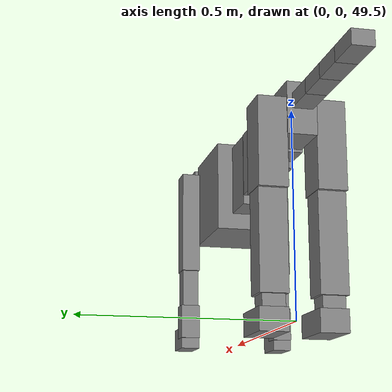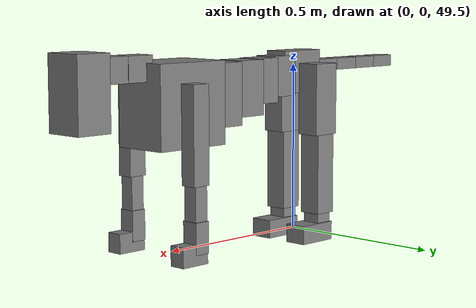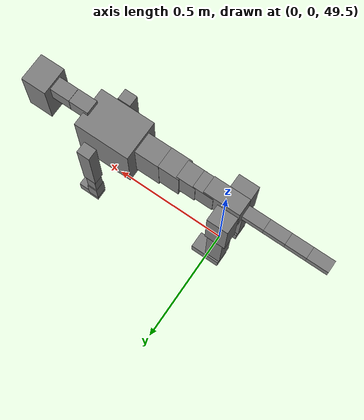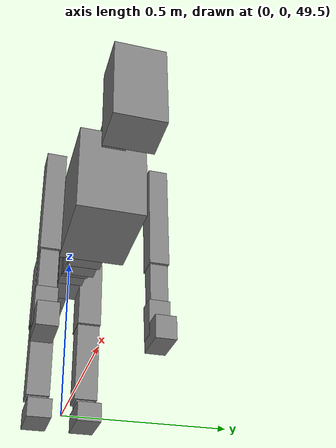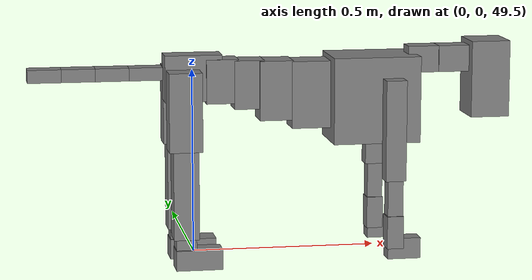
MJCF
<mujoco model="dog">

    <default>
        <joint armature="0.02" stiffness="1" damping="0.2" limited="true"/>
        <geom condim="3" friction="1 0.05 0.05" margin="0.01"/>
        <motor ctrllimited="true" ctrlrange="-1.0 1.0" forcelimited="true" gear="50"/>
    </default>

    <compiler inertiafromgeom="true" angle="radian"/>

    <option timestep="0.016" iterations="50" tolerance="1e-10" solver="Newton" jacobian="dense" cone="pyramidal"/>

    <size nconmax="20000" njmax="60000" nstack="5000000"/>
    <visual>
        <map force="0.1" zfar="30"/>
        <rgba haze="0.15 0.25 0.35 1"/>
        <quality shadowsize="2048"/>
        <global offwidth="800" offheight="800"/>
    </visual>

    <asset>
        <texture type="skybox" builtin="gradient" rgb1="0.3 0.5 0.7" rgb2="0 0 0" width="512" height="512"/>
        <texture name="texplane" type="2d" builtin="checker" rgb1=".2 .3 .4" rgb2=".1 0.15 0.2" width="512" height="512"
                 mark="cross" markrgb=".8 .8 .8"/>
        <texture name="texgeom" type="cube" builtin="flat" mark="cross" width="127" height="1278" rgb1="0.8 0.6 0.4"
                 rgb2="0.8 0.6 0.4" markrgb="1 1 1" random="0.01"/>

        <material name="matplane" reflectance="0.3" texture="texplane" texrepeat="1 1" texuniform="true"/>
        <material name="matgeom" texture="texgeom" texuniform="true" rgba="0.8 0.6 .4 1"/>
    </asset>

    <worldbody>
        <geom name="floor" pos="0 0 0" size="0 0 .25" type="plane" material="matplane" condim="3"/>

        <light directional="false" diffuse=".2 .2 .2" specular="0 0 0" pos="0 0 5" dir="0 0 -1" castshadow="false"/>
        <light mode="targetbodycom" target="torso" directional="false" diffuse=".8 .8 .8" specular="0.3 0.3 0.3"
               pos="0 0 4.0" dir="0 0 -1"/>

        <body name="root" pos="0 0 50">
            <freejoint name="root_1"/>
            <geom type="box" pos="0 0 -0.02" size="0.0774  0.0358  0.063" density="2030"/>

            <body name="spine1" pos="0.054 0 0">
                <joint name="spine1_y" axis="0 1 0" range="0 0.7" limited="true"/>
                <geom type="box" pos="0.02375 0 -0.03" size="0.04375  0.0375  0.05985" density="2030"/>

                <body name="spine2" pos="0.0612 0 0">
                    <joint name="spine2_y" axis="0 1 0" range="-0.15 0.15" limited="true"/>
                    <geom type="box" pos="0.03555  0  -0.04" size="0.04055  0.039  0.06615" density="2030"/>

                    <body name="spine3" pos="0.0730 0 0">
                        <joint name="spine3_y" axis="0 1 0" range="-0.15 0.15" limited="true"/>
                        <geom type="box" pos="0.03555  0  -0.057" size="0.04555  0.0445  0.081" density="2030"/>

                        <body name="spine4" pos="0.0780 0 0">
                            <joint name="spine4_y" axis="0 1 0" range="-0.15 0.15" limited="true"/>
                            <geom type="box" pos="0.05265  0  -0.07" size="0.05265  0.045  0.09135" density="2030"/>

                            <body name="torso" pos="0.1082 0 0">
                                <joint name="torso_y" axis="0 1 0" range="-0.15 0.15" limited="true"/>
                                <geom type="box" pos="0.11925  0  -0.085" size="0.11925  0.085  0.11745"
                                      density="2030"/>

                                <body name="neck1" pos="0.2160  0   0.0180">
                                    <joint name="neck1_y" axis="0 1 0" range="-1.2  -1" limited="true"/>
                                    <geom type="box" pos="0.0423  0  0" size="0.0423  0.03  0.036" density="2325"/>

                                    <body name="neck2" pos="0.0853  0  0">
                                        <joint name="neck2_y" axis="0 1 0" range="0.1  0" limited="true"/>
                                        <geom type="box" pos="0.0423  0  0" size="0.0423  0.03  0.036" density="2325"/>

                                        <body name="head" pos="0.0853  0  0">
                                            <joint name="head_y" axis="0 1 0" range="-0.3  -0.2" limited="true"/>
                                            <geom type="box" pos="0.0531  0  -0.055" size="0.0531  0.06  0.1044"
                                                  density="4030"/>

                                        </body>
                                    </body>
                                </body>

                                <body name="front_shoulder" pos="0.156  0   -0.0480">
                                    <joint name="front_shoulder_y" axis="0 1 0" range="-1 1.5" limited="true"/>
                                    <geom type="box" pos="0 0.13 -0.1101" size="0.0279  0.0238  0.1367" density="1158"/>
                                    <geom type="box" pos="0 -0.13 -0.1101" size="0.0279  0.0238  0.1367"
                                          density="1158"/>

                                    <body name="front_elbow" pos="0  0  -0.2202">
                                        <joint name="front_elbow_y" axis="0 1 0" range="-2 0" limited="true"/>
                                        <geom type="box" pos="0 0.13 -0.0680" size="0.0210  0.0214  0.0680"
                                              density="1081"/>
                                        <geom type="box" pos="0 -0.13 -0.0680" size="0.0210  0.0214  0.0680"
                                              density="1081"/>

                                        <body name="front_wrist" pos="0  0  -0.1360">
                                            <joint name="front_wrist_y" axis="0 1 0" range="-0.2 0" limited="true"/>
                                            <geom type="box" pos="0 0.13 -0.0311" size="0.0226  0.0251  0.0443"
                                                  density="1664"/>
                                            <geom type="box" pos="0 -0.13 -0.0311" size="0.0226  0.0251  0.0443"
                                                  density="1664"/>

                                            <body name="front_finger_end" pos="0  0  -0.0622">
                                                <joint name="front_finger_y" axis="0 1 0" range="-0.4 1"
                                                       limited="true"/>
                                                <geom type="box" pos="0.0245  0.13  -0.0132"
                                                      size="0.0449  0.0245  0.0282" density="1515"/>
                                                <geom type="box" pos="0.0245  -0.13  -0.0132"
                                                      size="0.0449  0.0245  0.0282" density="1515"/>

                                            </body>

                                        </body>
                                    </body>
                                </body>

                            </body>
                        </body>
                    </body>
                </body>
            </body>

            <body name="back_hip" pos="-0.03 0 -0.018">
                <joint name="back_hip_y" axis="0 1 0" range="-1.5 0.3" limited="true"/>
                <geom type="box" pos="0 0.07 -0.0838" size="0.0447  0.0351  0.1066" density="1154"/>
                <geom type="box" pos="0 -0.07 -0.0838" size="0.0447  0.0351  0.1066" density="1154"/>

                <body name="back_knee" pos="0  0  -0.1677">
                    <joint name="back_knee_y" axis="0 1 0" range="0 2.8" limited="true"/>
                    <geom type="box" pos="0 0.07 -0.1229" size="0.0343  0.0338  0.1385" density="1227"/>
                    <geom type="box" pos="0 -0.07 -0.1229" size="0.0343  0.0338  0.1385" density="1227"/>

                    <body name="back_ankle" pos="0  0  -0.2458">
                        <joint name="back_ankle_y" axis="0 1 0" range="-2.2 0" limited="true"/>
                        <geom type="box" pos="0 0.07 -0.0298" size="0.0273  0.0273  0.0410" density="1284"/>
                        <geom type="box" pos="0 -0.07 -0.0298" size="0.0273  0.0273  0.0410" density="1284"/>

                        <body name="back_toe_end" pos="0  0  -0.0596">
                            <joint name="back_toe_y" axis="0 1 0" range="-0.4 1" limited="true"/>
                            <geom type="box" pos="0.0345  0.07  -0.0124" size="0.0633  0.0345  0.0274" density="1515"/>
                            <geom type="box" pos="0.0345  -0.07  -0.0124" size="0.0633  0.0345  0.0274" density="1515"/>

                        </body>
                    </body>
                </body>
            </body>

            <body name="tail1" pos="-0.074 0 -0.006">
                <joint name="tail1_y" axis="0 1 0" range="-0.2 0.2" limited="true"/>
                <geom type="box" pos="-0.0536  0  0" size="0.045  0.025  0.0175" density="1587"/>

                <body name="tail2" pos="-0.09 0 0">
                    <joint name="tail2_y" axis="0 1 0" range="-0.2 0.2" limited="true"/>
                    <geom type="box" pos="-0.0536  0  0" size="0.045  0.025  0.0175" density="1587"/>

                    <body name="tail3" pos="-0.09 0 0">
                        <joint name="tail3_y" axis="0 1 0" range="-0.2 0.2" limited="true"/>
                        <geom type="box" pos="-0.0536  0  0" size="0.045  0.025  0.0175" density="1587"/>

                        <body name="tail4" pos="-0.09 0 0">
                            <joint name="tail4_y" axis="0 1 0" range="-0.2 0.2" limited="true"/>
                            <geom type="box" pos="-0.0536  0  0" size="0.045  0.025  0.0175" density="1587"/>

                        </body>
                    </body>
                </body>
            </body>
        </body>
    </worldbody>

    <actuator>
        <motor joint="spine1_y" forcerange="-150 150     "/>
        <motor joint="spine2_y" forcerange="-150 150     "/>
        <motor joint="spine3_y" forcerange="-150 150     "/>
        <motor joint="spine4_y" forcerange="-150 150     "/>
        <motor joint="torso_y" forcerange="-150 150     "/>
        <motor joint="neck1_y" forcerange="-100 100       "/>
        <motor joint="neck2_y" forcerange="-100 100       "/>
        <motor joint="head_y" forcerange="-150 150       "/>
        <motor joint="front_shoulder_y" forcerange="-157.74 101.08"/>
        <motor joint="front_elbow_y" forcerange="-105.91 150.05"/>
        <motor joint="front_wrist_y" forcerange="-104.18 97.00"/>
        <motor joint="front_finger_y" forcerange="-65.62 25.08"/>
        <motor joint="back_hip_y" forcerange="-331.67 336.15"/>
        <motor joint="back_knee_y" forcerange="-313.91 377.25"/>
        <motor joint="back_angle_y" forcerange="-93.46 243.43"/>
        <motor joint="back_toe_y" forcerange="-57.30 139.06"/>
        <motor joint="tail1_y" forcerange="-50 50     "/>
        <motor joint="tail2_y" forcerange="-50 50     "/>
        <motor joint="tail3_y" forcerange="-50 50     "/>
        <motor joint="tail4_y" forcerange="-50 50     "/>
    </actuator>
</mujoco>
